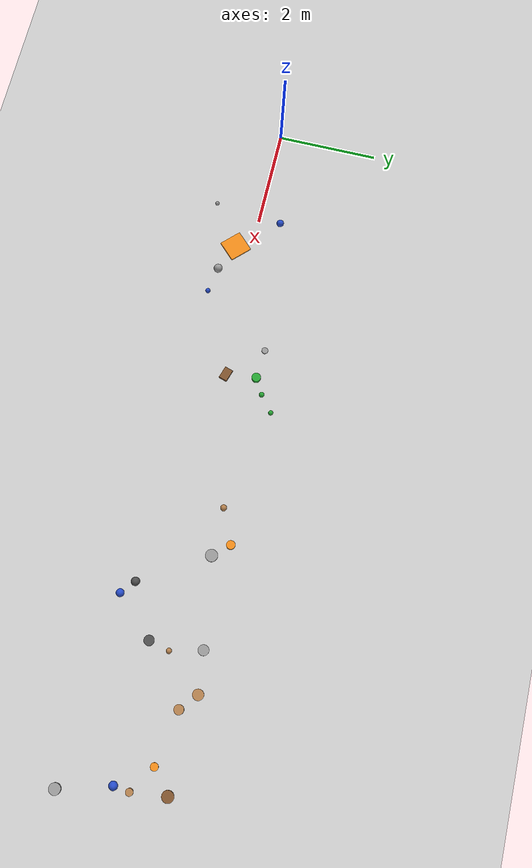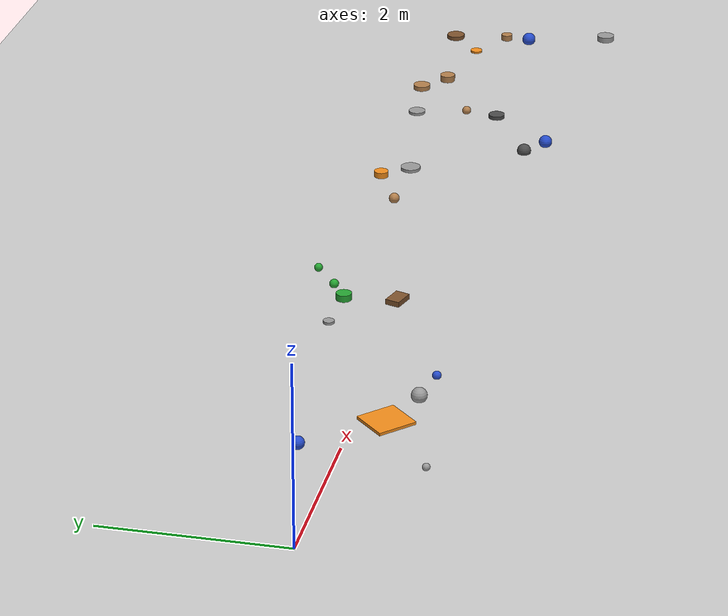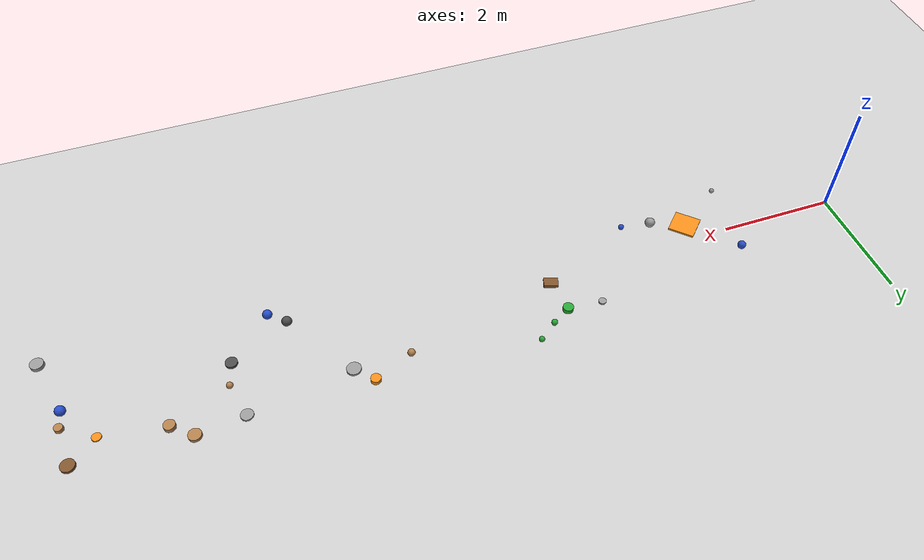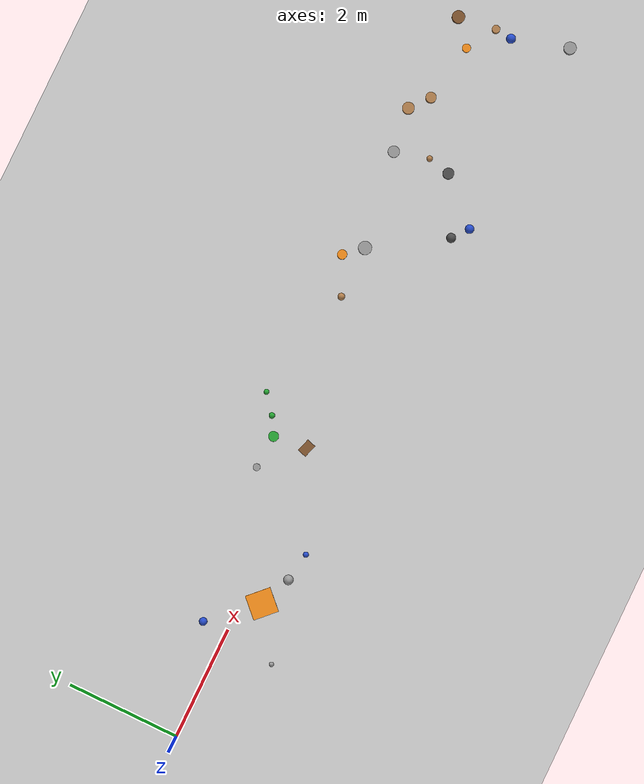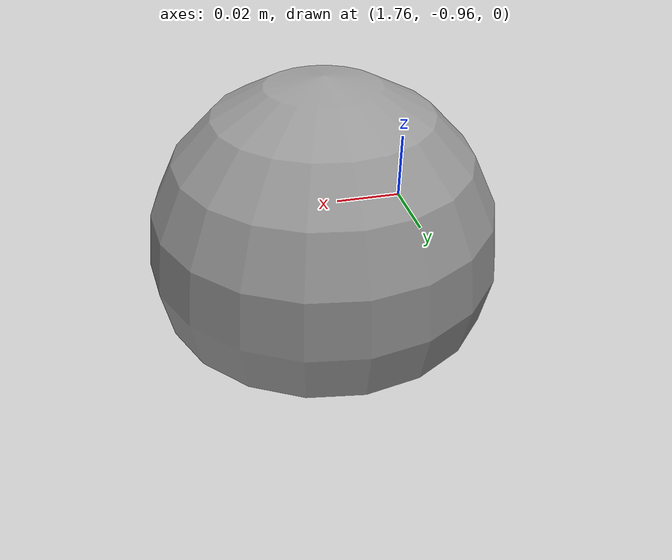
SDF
<?xml version="1.0" ?>
<!-- 由 omni_world.py 自动生成: scene=random seed=2 -->
<sdf version="1.5">
  <world name="random">
    <physics type="ode">
      <type>world</type>
      <max_step_size>0.001</max_step_size>
      <real_time_update_rate>1000</real_time_update_rate>
      <iters>500</iters>
    </physics>
    <include><uri>model://sun</uri></include>
    <include><uri>model://ground_plane</uri></include>
    <model name="r_box_0">
      <static>true</static>
      <pose>2.645 -0.333 0.016 0.0000 0.0000 0.7904</pose>
      <link name="link">
        <collision name="collision">
          <geometry><box><size>0.433 0.449 0.032</size></box></geometry>
          <surface><friction><ode><mu>1.0</mu><mu2>1.0</mu2></ode></friction></surface>
        </collision>
        <visual name="visual">
          <geometry><box><size>0.433 0.449 0.032</size></box></geometry>
          <material><script><uri>file://media/materials/scripts/gazebo.material</uri>
            <name>Gazebo/Orange</name></script></material>
        </visual>
      </link>
    </model>
    <model name="r_sph_1">
      <static>true</static>
      <pose>1.947 0.435 0.045 0 0 0</pose>
      <link name="link">
        <collision name="collision">
          <geometry><sphere><radius>0.072</radius></sphere></geometry>
          <surface><friction><ode><mu>1.0</mu><mu2>1.0</mu2></ode></friction></surface>
        </collision>
        <visual name="visual">
          <geometry><sphere><radius>0.072</radius></sphere></geometry>
          <material><script><uri>file://media/materials/scripts/gazebo.material</uri>
            <name>Gazebo/Blue</name></script></material>
        </visual>
      </link>
    </model>
    <model name="r_sph_2">
      <static>true</static>
      <pose>13.196 0.005 0.042 0 0 0</pose>
      <link name="link">
        <collision name="collision">
          <geometry><sphere><radius>0.084</radius></sphere></geometry>
          <surface><friction><ode><mu>1.0</mu><mu2>1.0</mu2></ode></friction></surface>
        </collision>
        <visual name="visual">
          <geometry><sphere><radius>0.084</radius></sphere></geometry>
          <material><script><uri>file://media/materials/scripts/gazebo.material</uri>
            <name>Gazebo/Blue</name></script></material>
        </visual>
      </link>
    </model>
    <model name="r_cyl_3">
      <static>true</static>
      <pose>13.148 0.979 0.025 0 0 0</pose>
      <link name="link">
        <collision name="collision">
          <geometry><cylinder><radius>0.112</radius><length>0.050</length></cylinder></geometry>
          <surface><friction><ode><mu>1.0</mu><mu2>1.0</mu2></ode></friction></surface>
        </collision>
        <visual name="visual">
          <geometry><cylinder><radius>0.112</radius><length>0.050</length></cylinder></geometry>
          <material><script><uri>file://media/materials/scripts/gazebo.material</uri>
            <name>Gazebo/Brown</name></script></material>
        </visual>
      </link>
    </model>
    <model name="r_sph_4">
      <static>true</static>
      <pose>3.718 -0.647 0.016 0 0 0</pose>
      <link name="link">
        <collision name="collision">
          <geometry><sphere><radius>0.049</radius></sphere></geometry>
          <surface><friction><ode><mu>1.0</mu><mu2>1.0</mu2></ode></friction></surface>
        </collision>
        <visual name="visual">
          <geometry><sphere><radius>0.049</radius></sphere></geometry>
          <material><script><uri>file://media/materials/scripts/gazebo.material</uri>
            <name>Gazebo/Blue</name></script></material>
        </visual>
      </link>
    </model>
    <model name="r_sph_5">
      <static>true</static>
      <pose>9.931 -0.764 0.041 0 0 0</pose>
      <link name="link">
        <collision name="collision">
          <geometry><sphere><radius>0.080</radius></sphere></geometry>
          <surface><friction><ode><mu>1.0</mu><mu2>1.0</mu2></ode></friction></surface>
        </collision>
        <visual name="visual">
          <geometry><sphere><radius>0.080</radius></sphere></geometry>
          <material><script><uri>file://media/materials/scripts/gazebo.material</uri>
            <name>Gazebo/Blue</name></script></material>
        </visual>
      </link>
    </model>
    <model name="r_sph_6">
      <static>true</static>
      <pose>5.922 1.154 0.044 0 0 0</pose>
      <link name="link">
        <collision name="collision">
          <geometry><sphere><radius>0.048</radius></sphere></geometry>
          <surface><friction><ode><mu>1.0</mu><mu2>1.0</mu2></ode></friction></surface>
        </collision>
        <visual name="visual">
          <geometry><sphere><radius>0.048</radius></sphere></geometry>
          <material><script><uri>file://media/materials/scripts/gazebo.material</uri>
            <name>Gazebo/Green</name></script></material>
        </visual>
      </link>
    </model>
    <model name="r_sph_7">
      <static>true</static>
      <pose>10.732 0.372 0.019 0 0 0</pose>
      <link name="link">
        <collision name="collision">
          <geometry><sphere><radius>0.054</radius></sphere></geometry>
          <surface><friction><ode><mu>1.0</mu><mu2>1.0</mu2></ode></friction></surface>
        </collision>
        <visual name="visual">
          <geometry><sphere><radius>0.054</radius></sphere></geometry>
          <material><script><uri>file://media/materials/scripts/gazebo.material</uri>
            <name>Gazebo/Wood</name></script></material>
        </visual>
      </link>
    </model>
    <model name="r_sph_8">
      <static>true</static>
      <pose>7.942 0.711 0.033 0 0 0</pose>
      <link name="link">
        <collision name="collision">
          <geometry><sphere><radius>0.063</radius></sphere></geometry>
          <surface><friction><ode><mu>1.0</mu><mu2>1.0</mu2></ode></friction></surface>
        </collision>
        <visual name="visual">
          <geometry><sphere><radius>0.063</radius></sphere></geometry>
          <material><script><uri>file://media/materials/scripts/gazebo.material</uri>
            <name>Gazebo/Wood</name></script></material>
        </visual>
      </link>
    </model>
    <model name="r_cyl_9">
      <static>true</static>
      <pose>8.596 1.009 0.035 0 0 0</pose>
      <link name="link">
        <collision name="collision">
          <geometry><cylinder><radius>0.084</radius><length>0.071</length></cylinder></geometry>
          <surface><friction><ode><mu>1.0</mu><mu2>1.0</mu2></ode></friction></surface>
        </collision>
        <visual name="visual">
          <geometry><cylinder><radius>0.084</radius><length>0.071</length></cylinder></geometry>
          <material><script><uri>file://media/materials/scripts/gazebo.material</uri>
            <name>Gazebo/Orange</name></script></material>
        </visual>
      </link>
    </model>
    <model name="r_cyl_10">
      <static>true</static>
      <pose>11.684 0.804 0.041 0 0 0</pose>
      <link name="link">
        <collision name="collision">
          <geometry><cylinder><radius>0.093</radius><length>0.081</length></cylinder></geometry>
          <surface><friction><ode><mu>1.0</mu><mu2>1.0</mu2></ode></friction></surface>
        </collision>
        <visual name="visual">
          <geometry><cylinder><radius>0.093</radius><length>0.081</length></cylinder></geometry>
          <material><script><uri>file://media/materials/scripts/gazebo.material</uri>
            <name>Gazebo/Wood</name></script></material>
        </visual>
      </link>
    </model>
    <model name="r_cyl_11">
      <static>true</static>
      <pose>5.291 0.718 0.039 0 0 0</pose>
      <link name="link">
        <collision name="collision">
          <geometry><cylinder><radius>0.089</radius><length>0.078</length></cylinder></geometry>
          <surface><friction><ode><mu>1.0</mu><mu2>1.0</mu2></ode></friction></surface>
        </collision>
        <visual name="visual">
          <geometry><cylinder><radius>0.089</radius><length>0.078</length></cylinder></geometry>
          <material><script><uri>file://media/materials/scripts/gazebo.material</uri>
            <name>Gazebo/Green</name></script></material>
        </visual>
      </link>
    </model>
    <model name="r_cyl_12">
      <static>true</static>
      <pose>10.637 -0.027 0.023 0 0 0</pose>
      <link name="link">
        <collision name="collision">
          <geometry><cylinder><radius>0.098</radius><length>0.046</length></cylinder></geometry>
          <surface><friction><ode><mu>1.0</mu><mu2>1.0</mu2></ode></friction></surface>
        </collision>
        <visual name="visual">
          <geometry><cylinder><radius>0.098</radius><length>0.046</length></cylinder></geometry>
          <material><script><uri>file://media/materials/scripts/gazebo.material</uri>
            <name>Gazebo/DarkGrey</name></script></material>
        </visual>
      </link>
    </model>
    <model name="r_cyl_13">
      <static>true</static>
      <pose>10.574 0.978 0.017 0 0 0</pose>
      <link name="link">
        <collision name="collision">
          <geometry><cylinder><radius>0.102</radius><length>0.033</length></cylinder></geometry>
          <surface><friction><ode><mu>1.0</mu><mu2>1.0</mu2></ode></friction></surface>
        </collision>
        <visual name="visual">
          <geometry><cylinder><radius>0.102</radius><length>0.033</length></cylinder></geometry>
          <material><script><uri>file://media/materials/scripts/gazebo.material</uri>
            <name>Gazebo/Grey</name></script></material>
        </visual>
      </link>
    </model>
    <model name="r_sph_14">
      <static>true</static>
      <pose>9.661 -0.545 0.018 0 0 0</pose>
      <link name="link">
        <collision name="collision">
          <geometry><sphere><radius>0.084</radius></sphere></geometry>
          <surface><friction><ode><mu>1.0</mu><mu2>1.0</mu2></ode></friction></surface>
        </collision>
        <visual name="visual">
          <geometry><sphere><radius>0.084</radius></sphere></geometry>
          <material><script><uri>file://media/materials/scripts/gazebo.material</uri>
            <name>Gazebo/DarkGrey</name></script></material>
        </visual>
      </link>
    </model>
    <model name="r_sph_15">
      <static>true</static>
      <pose>3.206 -0.562 0.039 0 0 0</pose>
      <link name="link">
        <collision name="collision">
          <geometry><sphere><radius>0.087</radius></sphere></geometry>
          <surface><friction><ode><mu>1.0</mu><mu2>1.0</mu2></ode></friction></surface>
        </collision>
        <visual name="visual">
          <geometry><sphere><radius>0.087</radius></sphere></geometry>
          <material><script><uri>file://media/materials/scripts/gazebo.material</uri>
            <name>Gazebo/Grey</name></script></material>
        </visual>
      </link>
    </model>
    <model name="r_cyl_16">
      <static>true</static>
      <pose>12.725 0.623 0.012 0 0 0</pose>
      <link name="link">
        <collision name="collision">
          <geometry><cylinder><radius>0.075</radius><length>0.024</length></cylinder></geometry>
          <surface><friction><ode><mu>1.0</mu><mu2>1.0</mu2></ode></friction></surface>
        </collision>
        <visual name="visual">
          <geometry><cylinder><radius>0.075</radius><length>0.024</length></cylinder></geometry>
          <material><script><uri>file://media/materials/scripts/gazebo.material</uri>
            <name>Gazebo/Orange</name></script></material>
        </visual>
      </link>
    </model>
    <model name="r_sph_17">
      <static>true</static>
      <pose>1.793 -0.923 0.012 0 0 0</pose>
      <link name="link">
        <collision name="collision">
          <geometry><sphere><radius>0.042</radius></sphere></geometry>
          <surface><friction><ode><mu>1.0</mu><mu2>1.0</mu2></ode></friction></surface>
        </collision>
        <visual name="visual">
          <geometry><sphere><radius>0.042</radius></sphere></geometry>
          <material><script><uri>file://media/materials/scripts/gazebo.material</uri>
            <name>Gazebo/Grey</name></script></material>
        </visual>
      </link>
    </model>
    <model name="r_cyl_18">
      <static>true</static>
      <pose>4.696 0.752 0.015 0 0 0</pose>
      <link name="link">
        <collision name="collision">
          <geometry><cylinder><radius>0.063</radius><length>0.031</length></cylinder></geometry>
          <surface><friction><ode><mu>1.0</mu><mu2>1.0</mu2></ode></friction></surface>
        </collision>
        <visual name="visual">
          <geometry><cylinder><radius>0.063</radius><length>0.031</length></cylinder></geometry>
          <material><script><uri>file://media/materials/scripts/gazebo.material</uri>
            <name>Gazebo/Grey</name></script></material>
        </visual>
      </link>
    </model>
    <model name="r_cyl_19">
      <static>true</static>
      <pose>8.868 0.706 0.019 0 0 0</pose>
      <link name="link">
        <collision name="collision">
          <geometry><cylinder><radius>0.118</radius><length>0.037</length></cylinder></geometry>
          <surface><friction><ode><mu>1.0</mu><mu2>1.0</mu2></ode></friction></surface>
        </collision>
        <visual name="visual">
          <geometry><cylinder><radius>0.118</radius><length>0.037</length></cylinder></geometry>
          <material><script><uri>file://media/materials/scripts/gazebo.material</uri>
            <name>Gazebo/Grey</name></script></material>
        </visual>
      </link>
    </model>
    <model name="r_cyl_20">
      <static>true</static>
      <pose>13.231 0.307 0.036 0 0 0</pose>
      <link name="link">
        <collision name="collision">
          <geometry><cylinder><radius>0.070</radius><length>0.072</length></cylinder></geometry>
          <surface><friction><ode><mu>1.0</mu><mu2>1.0</mu2></ode></friction></surface>
        </collision>
        <visual name="visual">
          <geometry><cylinder><radius>0.070</radius><length>0.072</length></cylinder></geometry>
          <material><script><uri>file://media/materials/scripts/gazebo.material</uri>
            <name>Gazebo/Wood</name></script></material>
        </visual>
      </link>
    </model>
    <model name="r_box_21">
      <static>true</static>
      <pose>5.355 0.124 0.031 0.0000 0.0000 1.2625</pose>
      <link name="link">
        <collision name="collision">
          <geometry><box><size>0.166 0.242 0.062</size></box></geometry>
          <surface><friction><ode><mu>1.0</mu><mu2>1.0</mu2></ode></friction></surface>
        </collision>
        <visual name="visual">
          <geometry><box><size>0.166 0.242 0.062</size></box></geometry>
          <material><script><uri>file://media/materials/scripts/gazebo.material</uri>
            <name>Gazebo/Brown</name></script></material>
        </visual>
      </link>
    </model>
    <model name="r_cyl_22">
      <static>true</static>
      <pose>13.485 -0.976 0.034 0 0 0</pose>
      <link name="link">
        <collision name="collision">
          <geometry><cylinder><radius>0.109</radius><length>0.068</length></cylinder></geometry>
          <surface><friction><ode><mu>1.0</mu><mu2>1.0</mu2></ode></friction></surface>
        </collision>
        <visual name="visual">
          <geometry><cylinder><radius>0.109</radius><length>0.068</length></cylinder></geometry>
          <material><script><uri>file://media/materials/scripts/gazebo.material</uri>
            <name>Gazebo/Grey</name></script></material>
        </visual>
      </link>
    </model>
    <model name="r_cyl_23">
      <static>true</static>
      <pose>11.355 1.075 0.028 0 0 0</pose>
      <link name="link">
        <collision name="collision">
          <geometry><cylinder><radius>0.105</radius><length>0.056</length></cylinder></geometry>
          <surface><friction><ode><mu>1.0</mu><mu2>1.0</mu2></ode></friction></surface>
        </collision>
        <visual name="visual">
          <geometry><cylinder><radius>0.105</radius><length>0.056</length></cylinder></geometry>
          <material><script><uri>file://media/materials/scripts/gazebo.material</uri>
            <name>Gazebo/Wood</name></script></material>
        </visual>
      </link>
    </model>
    <model name="r_sph_24">
      <static>true</static>
      <pose>5.600 0.899 0.022 0 0 0</pose>
      <link name="link">
        <collision name="collision">
          <geometry><sphere><radius>0.053</radius></sphere></geometry>
          <surface><friction><ode><mu>1.0</mu><mu2>1.0</mu2></ode></friction></surface>
        </collision>
        <visual name="visual">
          <geometry><sphere><radius>0.053</radius></sphere></geometry>
          <material><script><uri>file://media/materials/scripts/gazebo.material</uri>
            <name>Gazebo/Green</name></script></material>
        </visual>
      </link>
    </model>

  </world>
</sdf>
